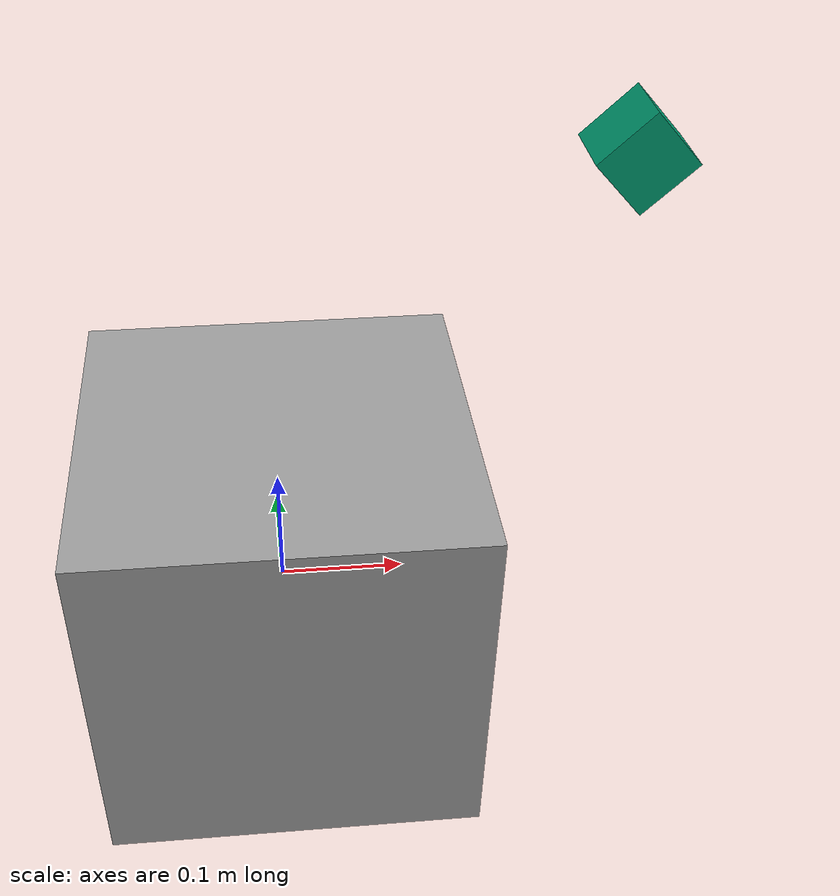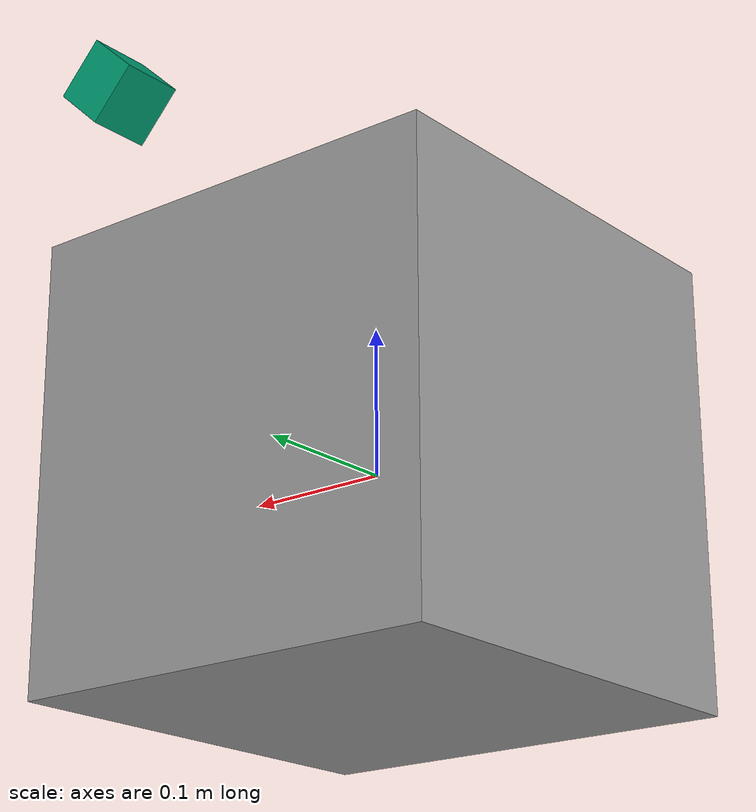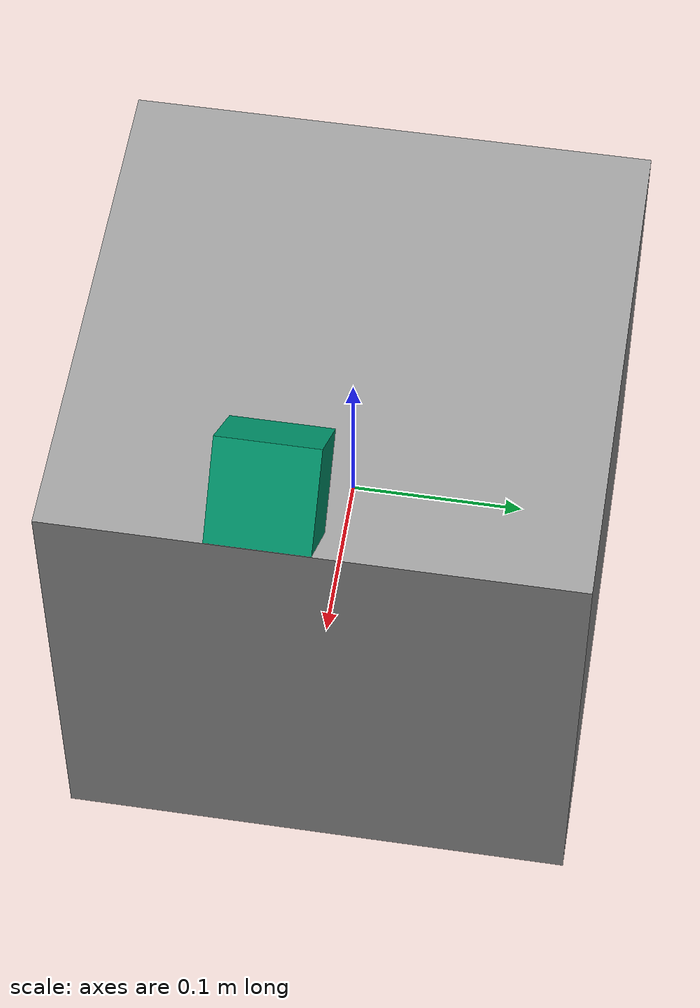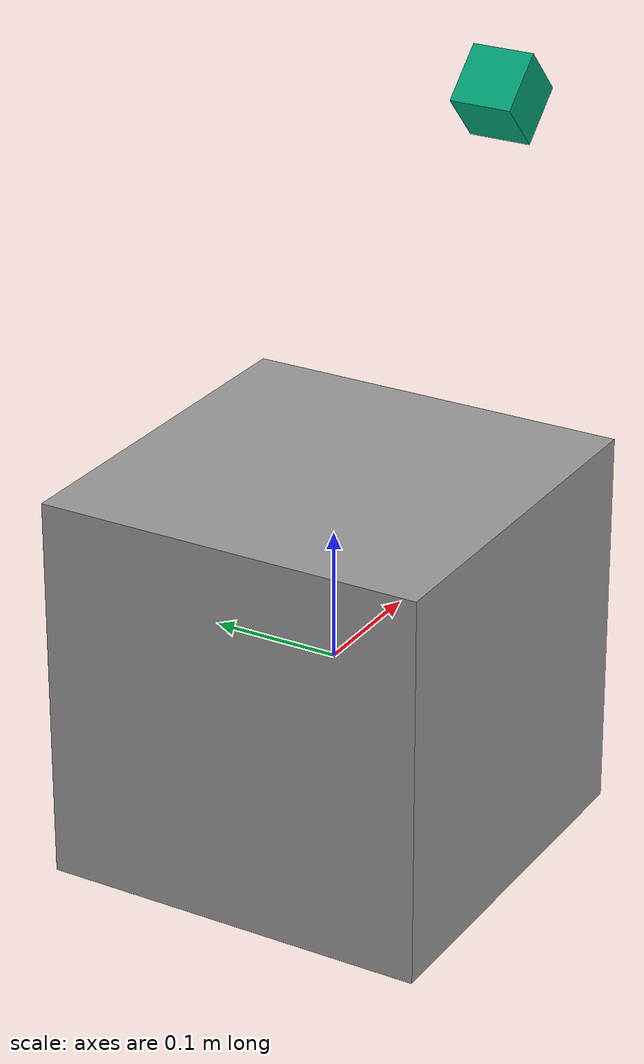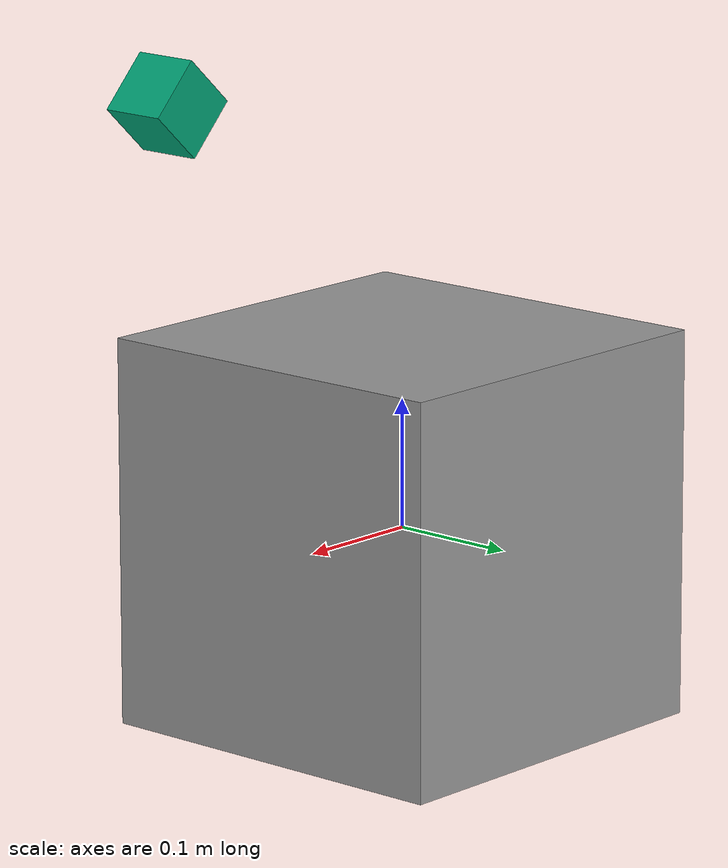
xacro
<?xml version="1.0" ?>
<robot name="table" xmlns:xacro="http://ros.org/wiki/xacro">

  <xacro:include filename="$(find ur5_gripper_moveit_config)/env_urdf/common.xacro"/>
  <xacro:include filename="$(find ur5_gripper_moveit_config)/env_urdf/camera.urdf.xacro"/>

  <link name="world"/>
  <joint name="table_joint" type="fixed" >
    <parent link="world" />
    <child link="base_link" />
    <origin xyz="0 0 0" rpy="0 0 0" />
  </joint>
  <link name="base_link">
    <inertial>
      <origin xyz="0 0 0" rpy="0 0 0"/>
      <box_inertial mass="1.0" height="0.3" width="0.3" depth="0.3"/>
    </inertial>
    <visual>
      <origin xyz="0 0 0" rpy="0 0 0"/>
      <geometry>
        <box size="0.3 0.3 0.3"/>
      </geometry>
    </visual>
    <collision>
      <origin xyz="0 0 0" rpy="0 0 0"/>
      <geometry>
        <box size="0.3 0.3 0.3" />
      </geometry>
    </collision>
  </link>

  <xacro:bird_camera_v0 parent="base_link"/>

  <gazebo reference="base_link">
    <material>Gazebo/Grey</material>
    <mu1>0.4</mu1>
    <mu2>0.4</mu2>
  </gazebo>

  <xacro:camera_gazebo_v0/>

</robot>

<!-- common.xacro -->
<robot xmlns:xacro="http://ros.org/wiki/xacro">
  <property name="PI" value="3.141592"/>

  <xacro:macro name="cylinder_inertial" params="mass radius length">
	<mass value="${mass}"/>
	<inertia ixx="${((radius*radius)/4 + (length*length)/12)*mass}" ixy="0" ixz="0"
			 iyy="${((radius*radius)/4 + (length*length)/12)*mass}" iyz="0"
			 izz="${(mass*radius*radius)/2}" />
  </xacro:macro>

  <xacro:macro name="box_inertial" params="mass height width depth">
	<mass value="${mass}"/>
	<inertia ixx="${(mass*(width*width+depth*depth))/12}" ixy="0" ixz="0"
			 iyy="${(mass*(height*height+depth*depth))/12}" iyz="0"
			 izz="${(mass*(height*height+width*width))/12}" />
  </xacro:macro>
</robot>

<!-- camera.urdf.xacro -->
<robot xmlns:xacro="http://ros.org/wiki/xacro">

  <xacro:include filename="$(find ur5_gripper_moveit_config)/env_urdf/common.xacro"/>
  <xacro:include filename="$(find ur5_gripper_moveit_config)/env_urdf/camera.gazebo.xacro"/>

  <xacro:macro name="bird_camera_v0" params="parent">

    <joint name="camera_joint" type="fixed">
      <parent link="${parent}"/>
      <child link="camera_link"/>
    </joint>
    <link name="camera_link">
      <visual>
        <geometry>
          <box size="0.05 0.05 0.05"/>
        </geometry>
	  <origin xyz="0.25 0 0.36" rpy="0 ${PI*6/25} ${PI}"/>
        <!--material name="red"/-->
      </visual>
    </link>

  </xacro:macro>
</robot>
